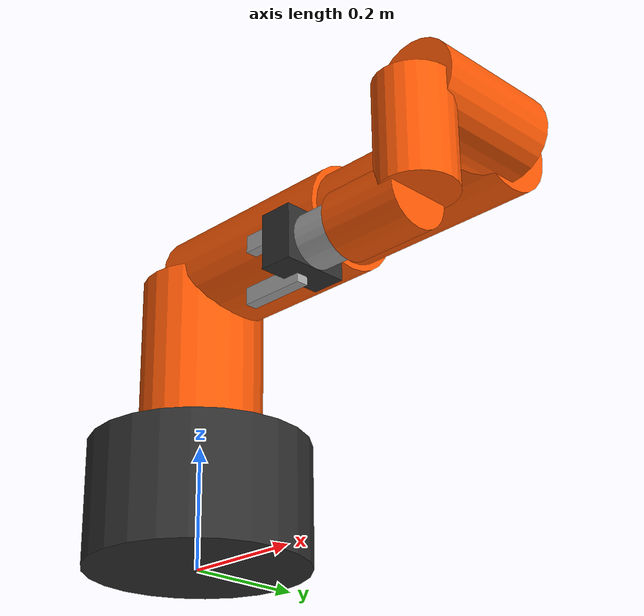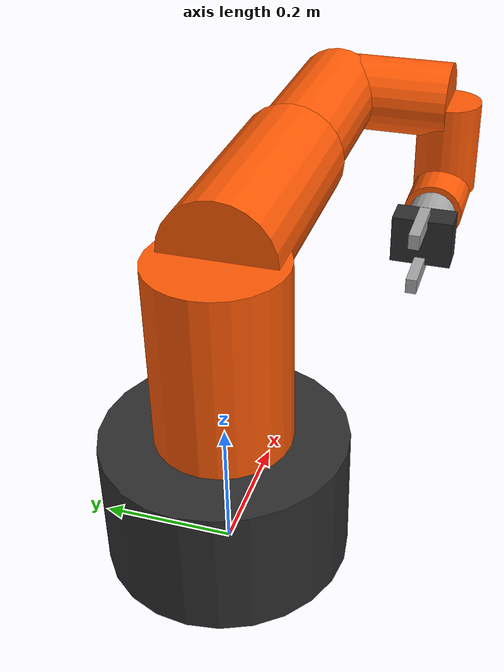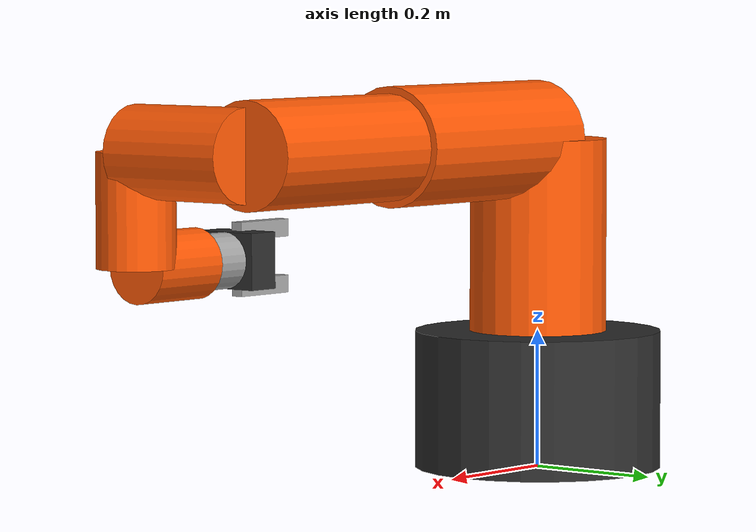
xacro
<?xml version="1.0"?>
<robot xmlns:xacro="http://www.ros.org/wiki/xacro" name="abb_irb1200_gripper">
  <xacro:arg name="use_gazebo" default="false"/>
  <xacro:arg name="use_fake_hardware" default="true"/>

  <material name="abb_orange"><color rgba="1.0 0.35 0.02 1.0"/></material>
  <material name="dark"><color rgba="0.18 0.18 0.18 1.0"/></material>
  <material name="silver"><color rgba="0.65 0.65 0.65 1.0"/></material>

  <xacro:macro name="simple_link" params="name length radius mass">
    <link name="${name}">
      <inertial><origin xyz="0 0 ${length/2}"/><mass value="${mass}"/><inertia ixx="0.05" ixy="0" ixz="0" iyy="0.05" iyz="0" izz="0.02"/></inertial>
      <visual><origin xyz="0 0 ${length/2}"/><geometry><cylinder length="${length}" radius="${radius}"/></geometry><material name="abb_orange"/></visual>
      <collision><origin xyz="0 0 ${length/2}"/><geometry><cylinder length="${length}" radius="${radius}"/></geometry></collision>
    </link>
  </xacro:macro>

  <link name="world"/>
  <link name="base_link">
    <inertial><mass value="20"/><inertia ixx="0.5" ixy="0" ixz="0" iyy="0.5" iyz="0" izz="0.5"/></inertial>
    <visual><geometry><cylinder length="0.20" radius="0.18"/></geometry><material name="dark"/></visual>
    <collision><geometry><cylinder length="0.20" radius="0.18"/></geometry></collision>
  </link>
  <joint name="world_joint" type="fixed"><parent link="world"/><child link="base_link"/><origin xyz="0 0 0.10"/></joint>

  <xacro:simple_link name="link_1" length="0.28" radius="0.10" mass="8"/>
  <xacro:simple_link name="link_2" length="0.34" radius="0.085" mass="7"/>
  <xacro:simple_link name="link_3" length="0.30" radius="0.075" mass="5"/>
  <xacro:simple_link name="link_4" length="0.20" radius="0.065" mass="3"/>
  <xacro:simple_link name="link_5" length="0.16" radius="0.055" mass="2"/>
  <xacro:simple_link name="link_6" length="0.12" radius="0.05" mass="1.5"/>

  <joint name="joint_1" type="revolute"><parent link="base_link"/><child link="link_1"/><origin xyz="0 0 0.10"/><axis xyz="0 0 1"/><limit lower="-2.967" upper="2.967" effort="200" velocity="3.0"/></joint>
  <joint name="joint_2" type="revolute"><parent link="link_1"/><child link="link_2"/><origin xyz="0 0 0.28" rpy="0 1.5708 0"/><axis xyz="0 0 1"/><limit lower="-1.745" upper="2.269" effort="200" velocity="3.0"/></joint>
  <joint name="joint_3" type="revolute"><parent link="link_2"/><child link="link_3"/><origin xyz="0 0 0.34"/><axis xyz="0 0 1"/><limit lower="-2.094" upper="1.221" effort="150" velocity="3.0"/></joint>
  <joint name="joint_4" type="revolute"><parent link="link_3"/><child link="link_4"/><origin xyz="0 0 0.30" rpy="1.5708 0 0"/><axis xyz="0 0 1"/><limit lower="-4.712" upper="4.712" effort="100" velocity="4.0"/></joint>
  <joint name="joint_5" type="revolute"><parent link="link_4"/><child link="link_5"/><origin xyz="0 0 0.20" rpy="0 1.5708 0"/><axis xyz="0 0 1"/><limit lower="-2.269" upper="2.269" effort="80" velocity="4.0"/></joint>
  <joint name="joint_6" type="revolute"><parent link="link_5"/><child link="link_6"/><origin xyz="0 0 0.16" rpy="1.5708 0 0"/><axis xyz="0 0 1"/><limit lower="-6.283" upper="6.283" effort="60" velocity="5.0"/></joint>

  <link name="tool0"><visual><geometry><cylinder length="0.06" radius="0.04"/></geometry><material name="silver"/></visual><collision><geometry><cylinder length="0.06" radius="0.04"/></geometry></collision></link>
  <joint name="tool0_fixed" type="fixed"><parent link="link_6"/><child link="tool0"/><origin xyz="0 0 0.15"/></joint>

  <link name="gripper_base"><visual><geometry><box size="0.10 0.08 0.05"/></geometry><material name="dark"/></visual><collision><geometry><box size="0.10 0.08 0.05"/></geometry></collision></link>
  <joint name="gripper_mount" type="fixed"><parent link="tool0"/><child link="gripper_base"/><origin xyz="0 0 0.055"/></joint>

  <link name="left_finger"><visual><origin xyz="0 0 0.05"/><geometry><box size="0.018 0.025 0.10"/></geometry><material name="silver"/></visual><collision><origin xyz="0 0 0.05"/><geometry><box size="0.018 0.025 0.10"/></geometry></collision></link>
  <joint name="left_finger_joint" type="prismatic"><parent link="gripper_base"/><child link="left_finger"/><origin xyz="0 0.04 0"/><axis xyz="0 1 0"/><limit lower="0.0" upper="0.035" effort="80" velocity="0.1"/></joint>
  <link name="right_finger"><visual><origin xyz="0 0 0.05"/><geometry><box size="0.018 0.025 0.10"/></geometry><material name="silver"/></visual><collision><origin xyz="0 0 0.05"/><geometry><box size="0.018 0.025 0.10"/></geometry></collision></link>
  <joint name="right_finger_joint" type="prismatic"><parent link="gripper_base"/><child link="right_finger"/><origin xyz="0 -0.04 0"/><axis xyz="0 -1 0"/><limit lower="0.0" upper="0.035" effort="80" velocity="0.1"/><mimic joint="left_finger_joint" multiplier="1.0" offset="0.0"/></joint>

  <ros2_control name="ABBIRB1200System" type="system">
    <hardware>
      <xacro:if value="$(arg use_fake_hardware)"><plugin>mock_components/GenericSystem</plugin><param name="calculate_dynamics">false</param></xacro:if>
      <xacro:unless value="$(arg use_fake_hardware)"><plugin>abb_hardware_interface/ABBSystemHardware</plugin><param name="rws_ip">192.168.125.1</param><param name="rws_port">80</param><param name="configure_via_rws">true</param></xacro:unless>
    </hardware>
    <xacro:macro name="arm_joint_hw" params="joint"><joint name="${joint}"><command_interface name="position"/><state_interface name="position"><param name="initial_value">0.0</param></state_interface><state_interface name="velocity"/></joint></xacro:macro>
    <xacro:arm_joint_hw joint="joint_1"/><xacro:arm_joint_hw joint="joint_2"/><xacro:arm_joint_hw joint="joint_3"/><xacro:arm_joint_hw joint="joint_4"/><xacro:arm_joint_hw joint="joint_5"/><xacro:arm_joint_hw joint="joint_6"/>
    <joint name="left_finger_joint"><command_interface name="position"/><state_interface name="position"><param name="initial_value">0.0</param></state_interface><state_interface name="velocity"/></joint>
  </ros2_control>

  <xacro:if value="$(arg use_gazebo)">
    <gazebo><plugin filename="libgazebo_ros2_control.so" name="gazebo_ros2_control"><parameters>$(find abb_irb1200_gripper_description)/config/controllers.yaml</parameters></plugin></gazebo>
  </xacro:if>
</robot>
